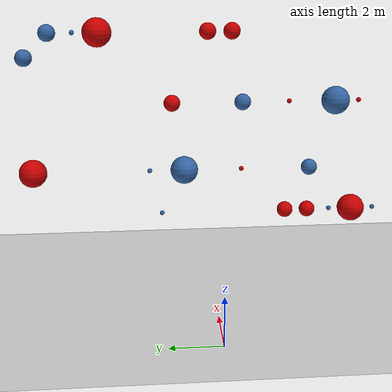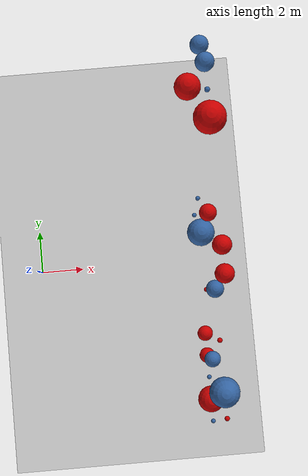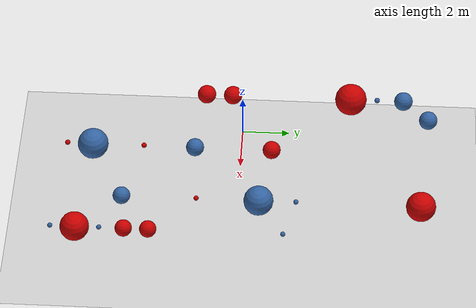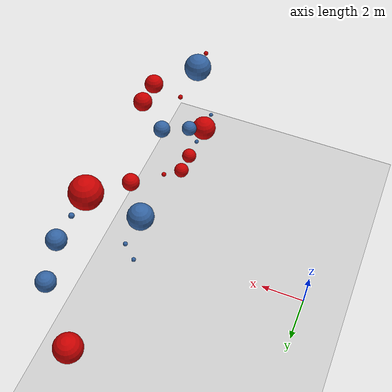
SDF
<sdf version="1.7">
 <world name="default">
  <physics type="ode">
   <gravity>0 0 -9.81</gravity>
   <max_step_size>0.001</max_step_size>
   <real_time_update_rate>1000</real_time_update_rate>
  </physics>
  <light name="sun" type="directional">
   <pose>0 0 10 0 -0 0</pose>
   <diffuse>0.8 0.8 0.8 1</diffuse>
   <specular>0.2 0.2 0.2 1</specular>
   <attenuation>
    <range>1000</range>
    <constant>0.9</constant>
    <linear>0.01</linear>
    <quadratic>0.001</quadratic>
   </attenuation>
   <direction>-0.5 0.1 -0.9</direction>
   <spot><inner_angle>0</inner_angle><outer_angle>0</outer_angle><falloff>0</falloff></spot>
  </light>
  <model name="ground_plane">
   <static>1</static>
   <link name="link">
    <collision name="collision">
     <geometry><plane><normal>0 0 1</normal><size>100 100</size></plane></geometry>
     <surface>
      <contact><collide_bitmask>65535</collide_bitmask></contact>
      <friction><ode><mu>100</mu><mu2>50</mu2></ode></friction>
     </surface>
    </collision>
    <visual name="visual">
     <cast_shadows>0</cast_shadows>
     <geometry><plane><normal>0 0 1</normal><size>100 100</size></plane></geometry>
     <material>
      <script><uri>file://media/materials/scripts/gazebo.material</uri><name>Gazebo/Grey</name></script>
     </material>
    </visual>
   </link>
  </model>
  <gravity>0 0 -9.8</gravity>
  <magnetic_field>6e-06 2.3e-05 -4.2e-05</magnetic_field>
  <atmosphere type="adiabatic"/>
  <physics type="ode">
   <max_step_size>0.001</max_step_size>
   <real_time_factor>1</real_time_factor>
   <real_time_update_rate>1000</real_time_update_rate>
  </physics>
  <scene><ambient>0.4 0.4 0.4 1</ambient><background>0.7 0.7 0.7 1</background><shadows>1</shadows></scene>
  <spherical_coordinates>
   <surface_model>EARTH_WGS84</surface_model>
   <latitude_deg>0</latitude_deg>
   <longitude_deg>0</longitude_deg>
   <elevation>0</elevation>
   <heading_deg>0</heading_deg>
  </spherical_coordinates>
  <model name="big_ball_red">
   <link name="link_2">
    <inertial>
     <mass>1</mass>
     <inertia><ixx>0.1</ixx><ixy>0</ixy><ixz>0</ixz><iyy>0.1</iyy><iyz>0</iyz><izz>0.1</izz></inertia>
    </inertial>
    <gravity>0</gravity>
    <visual name="visual">
     <geometry><sphere><radius>0.6</radius></sphere></geometry>
     <material>
      <lighting>1</lighting>
      <script><uri>file://media/materials/scripts/gazebo.material</uri><name>Gazebo/Grey</name></script>
      <shader type="pixel"><normal_map>__default__</normal_map></shader>
      <ambient>0.8 0 0 1</ambient>
      <diffuse>0.8 0 0 1</diffuse>
      <specular>0.8 0 0 1</specular>
      <emissive>0.8 0 0 1</emissive>
     </material>
    </visual>
    <collision name="collision">
     <geometry><sphere><radius>0.6</radius></sphere></geometry>
     <surface>
      <friction>
       <ode><mu>1</mu><mu2>1</mu2><fdir1>0 0 0</fdir1><slip1>0</slip1><slip2>0</slip2></ode>
       <torsional>
        <coefficient>1</coefficient>
        <patch_radius>0</patch_radius>
        <surface_radius>0</surface_radius>
        <use_patch_radius>1</use_patch_radius>
        <ode><slip>0</slip></ode>
       </torsional>
      </friction>
      <bounce><restitution_coefficient>0</restitution_coefficient><threshold>1e+06</threshold></bounce>
      <contact>
       <collide_without_contact>0</collide_without_contact>
       <collide_without_contact_bitmask>1</collide_without_contact_bitmask>
       <collide_bitmask>1</collide_bitmask>
       <ode>
        <soft_cfm>0</soft_cfm>
        <soft_erp>0.2</soft_erp>
        <kp>1e+13</kp>
        <kd>1</kd>
        <max_vel>0.01</max_vel>
        <min_depth>0</min_depth>
       </ode>
       <bullet>
        <split_impulse>1</split_impulse>
        <split_impulse_penetration_threshold>-0.01</split_impulse_penetration_threshold>
        <soft_cfm>0</soft_cfm>
        <soft_erp>0.2</soft_erp>
        <kp>1e+13</kp>
        <kd>1</kd>
       </bullet>
      </contact>
     </surface>
    </collision>
   </link>
   <static>0</static>
   <pose>7.5 -6.5 2 0 -0 0</pose>
  </model>
  <model name="small_ball_blue">
   <link name="link_16">
    <inertial>
     <mass>1</mass>
     <inertia><ixx>0.1</ixx><ixy>0</ixy><ixz>0</ixz><iyy>0.1</iyy><iyz>0</iyz><izz>0.1</izz></inertia>
    </inertial>
    <gravity>0</gravity>
    <visual name="visual">
     <geometry><sphere><radius>0.1</radius></sphere></geometry>
     <material>
      <lighting>1</lighting>
      <script><uri>file://media/materials/scripts/gazebo.material</uri><name>Gazebo/Grey</name></script>
      <shader type="pixel"><normal_map>__default__</normal_map></shader>
      <ambient>0.204 0.396 0.643 1</ambient>
      <diffuse>0.204 0.396 0.643 1</diffuse>
      <specular>0.204 0.396 0.643 1</specular>
      <emissive>0.125 0.29 0.529 1</emissive>
     </material>
    </visual>
    <collision name="collision">
     <geometry><sphere><radius>0.1</radius></sphere></geometry>
     <surface>
      <friction>
       <ode><mu>1</mu><mu2>1</mu2><fdir1>0 0 0</fdir1><slip1>0</slip1><slip2>0</slip2></ode>
       <torsional>
        <coefficient>1</coefficient>
        <patch_radius>0</patch_radius>
        <surface_radius>0</surface_radius>
        <use_patch_radius>1</use_patch_radius>
        <ode><slip>0</slip></ode>
       </torsional>
      </friction>
      <bounce><restitution_coefficient>0</restitution_coefficient><threshold>1e+06</threshold></bounce>
      <contact>
       <collide_without_contact>0</collide_without_contact>
       <collide_without_contact_bitmask>1</collide_without_contact_bitmask>
       <collide_bitmask>1</collide_bitmask>
       <ode>
        <soft_cfm>0</soft_cfm>
        <soft_erp>0.2</soft_erp>
        <kp>1e+13</kp>
        <kd>1</kd>
        <max_vel>0.01</max_vel>
        <min_depth>0</min_depth>
       </ode>
       <bullet>
        <split_impulse>1</split_impulse>
        <split_impulse_penetration_threshold>-0.01</split_impulse_penetration_threshold>
        <soft_cfm>0</soft_cfm>
        <soft_erp>0.2</soft_erp>
        <kp>1e+13</kp>
        <kd>1</kd>
       </bullet>
      </contact>
     </surface>
    </collision>
   </link>
   <static>0</static>
   <pose>7.5 -5.5 2 0 -0 0</pose>
  </model>
  <model name="medium_ball_red">
   <link name="link_3">
    <inertial>
     <mass>1</mass>
     <inertia><ixx>0.1</ixx><ixy>0</ixy><ixz>0</ixz><iyy>0.1</iyy><iyz>0</iyz><izz>0.1</izz></inertia>
    </inertial>
    <gravity>0</gravity>
    <visual name="visual">
     <geometry><sphere><radius>0.35</radius></sphere></geometry>
     <material>
      <lighting>1</lighting>
      <script><uri>file://media/materials/scripts/gazebo.material</uri><name>Gazebo/Grey</name></script>
      <shader type="pixel"><normal_map>__default__</normal_map></shader>
      <ambient>0.8 0 0 1</ambient>
      <diffuse>0.8 0 0 1</diffuse>
      <specular>0.8 0 0 1</specular>
      <emissive>0.8 0 0 1</emissive>
     </material>
    </visual>
    <collision name="collision">
     <geometry><sphere><radius>0.35</radius></sphere></geometry>
     <surface>
      <friction>
       <ode><mu>1</mu><mu2>1</mu2><fdir1>0 0 0</fdir1><slip1>0</slip1><slip2>0</slip2></ode>
       <torsional>
        <coefficient>1</coefficient>
        <patch_radius>0</patch_radius>
        <surface_radius>0</surface_radius>
        <use_patch_radius>1</use_patch_radius>
        <ode><slip>0</slip></ode>
       </torsional>
      </friction>
      <bounce><restitution_coefficient>0</restitution_coefficient><threshold>1e+06</threshold></bounce>
      <contact>
       <collide_without_contact>0</collide_without_contact>
       <collide_without_contact_bitmask>1</collide_without_contact_bitmask>
       <collide_bitmask>1</collide_bitmask>
       <ode>
        <soft_cfm>0</soft_cfm>
        <soft_erp>0.2</soft_erp>
        <kp>1e+13</kp>
        <kd>1</kd>
        <max_vel>0.01</max_vel>
        <min_depth>0</min_depth>
       </ode>
       <bullet>
        <split_impulse>1</split_impulse>
        <split_impulse_penetration_threshold>-0.01</split_impulse_penetration_threshold>
        <soft_cfm>0</soft_cfm>
        <soft_erp>0.2</soft_erp>
        <kp>1e+13</kp>
        <kd>1</kd>
       </bullet>
      </contact>
     </surface>
    </collision>
   </link>
   <static>0</static>
   <pose>7.5 -4.5 2 0 -0 0</pose>
  </model>
  <model name="medium_ball_red_0">
   <link name="link_3">
    <inertial>
     <mass>1</mass>
     <inertia><ixx>0.1</ixx><ixy>0</ixy><ixz>0</ixz><iyy>0.1</iyy><iyz>0</iyz><izz>0.1</izz></inertia>
    </inertial>
    <gravity>0</gravity>
    <visual name="visual">
     <geometry><sphere><radius>0.35</radius></sphere></geometry>
     <material>
      <lighting>1</lighting>
      <script><uri>file://media/materials/scripts/gazebo.material</uri><name>Gazebo/Grey</name></script>
      <shader type="pixel"><normal_map>__default__</normal_map></shader>
      <ambient>0.8 0 0 1</ambient>
      <diffuse>0.8 0 0 1</diffuse>
      <specular>0.8 0 0 1</specular>
      <emissive>0.8 0 0 1</emissive>
     </material>
    </visual>
    <collision name="collision">
     <geometry><sphere><radius>0.35</radius></sphere></geometry>
     <surface>
      <friction>
       <ode><mu>1</mu><mu2>1</mu2><fdir1>0 0 0</fdir1><slip1>0</slip1><slip2>0</slip2></ode>
       <torsional>
        <coefficient>1</coefficient>
        <patch_radius>0</patch_radius>
        <surface_radius>0</surface_radius>
        <use_patch_radius>1</use_patch_radius>
        <ode><slip>0</slip></ode>
       </torsional>
      </friction>
      <bounce><restitution_coefficient>0</restitution_coefficient><threshold>1e+06</threshold></bounce>
      <contact>
       <collide_without_contact>0</collide_without_contact>
       <collide_without_contact_bitmask>1</collide_without_contact_bitmask>
       <collide_bitmask>1</collide_bitmask>
       <ode>
        <soft_cfm>0</soft_cfm>
        <soft_erp>0.2</soft_erp>
        <kp>1e+13</kp>
        <kd>1</kd>
        <max_vel>0.01</max_vel>
        <min_depth>0</min_depth>
       </ode>
       <bullet>
        <split_impulse>1</split_impulse>
        <split_impulse_penetration_threshold>-0.01</split_impulse_penetration_threshold>
        <soft_cfm>0</soft_cfm>
        <soft_erp>0.2</soft_erp>
        <kp>1e+13</kp>
        <kd>1</kd>
       </bullet>
      </contact>
     </surface>
    </collision>
   </link>
   <static>0</static>
   <pose>7.5 -3.5 2 0 -0 0</pose>
  </model>
  <model name="small_ball_blue_0">
   <link name="link_16">
    <inertial>
     <mass>1</mass>
     <inertia><ixx>0.1</ixx><ixy>0</ixy><ixz>0</ixz><iyy>0.1</iyy><iyz>0</iyz><izz>0.1</izz></inertia>
    </inertial>
    <gravity>0</gravity>
    <visual name="visual">
     <geometry><sphere><radius>0.1</radius></sphere></geometry>
     <material>
      <lighting>1</lighting>
      <script><uri>file://media/materials/scripts/gazebo.material</uri><name>Gazebo/Grey</name></script>
      <shader type="pixel"><normal_map>__default__</normal_map></shader>
      <ambient>0.204 0.396 0.643 1</ambient>
      <diffuse>0.204 0.396 0.643 1</diffuse>
      <specular>0.204 0.396 0.643 1</specular>
      <emissive>0.125 0.29 0.529 1</emissive>
     </material>
    </visual>
    <collision name="collision">
     <geometry><sphere><radius>0.1</radius></sphere></geometry>
     <surface>
      <friction>
       <ode><mu>1</mu><mu2>1</mu2><fdir1>0 0 0</fdir1><slip1>0</slip1><slip2>0</slip2></ode>
       <torsional>
        <coefficient>1</coefficient>
        <patch_radius>0</patch_radius>
        <surface_radius>0</surface_radius>
        <use_patch_radius>1</use_patch_radius>
        <ode><slip>0</slip></ode>
       </torsional>
      </friction>
      <bounce><restitution_coefficient>0</restitution_coefficient><threshold>1e+06</threshold></bounce>
      <contact>
       <collide_without_contact>0</collide_without_contact>
       <collide_without_contact_bitmask>1</collide_without_contact_bitmask>
       <collide_bitmask>1</collide_bitmask>
       <ode>
        <soft_cfm>0</soft_cfm>
        <soft_erp>0.2</soft_erp>
        <kp>1e+13</kp>
        <kd>1</kd>
        <max_vel>0.01</max_vel>
        <min_depth>0</min_depth>
       </ode>
       <bullet>
        <split_impulse>1</split_impulse>
        <split_impulse_penetration_threshold>-0.01</split_impulse_penetration_threshold>
        <soft_cfm>0</soft_cfm>
        <soft_erp>0.2</soft_erp>
        <kp>1e+13</kp>
        <kd>1</kd>
       </bullet>
      </contact>
     </surface>
    </collision>
   </link>
   <static>0</static>
   <pose>7.5 2 2 0 -0 0</pose>
  </model>
  <model name="big_ball_red_0">
   <link name="link_2">
    <inertial>
     <mass>1</mass>
     <inertia><ixx>0.1</ixx><ixy>0</ixy><ixz>0</ixz><iyy>0.1</iyy><iyz>0</iyz><izz>0.1</izz></inertia>
    </inertial>
    <gravity>0</gravity>
    <visual name="visual">
     <geometry><sphere><radius>0.6</radius></sphere></geometry>
     <material>
      <lighting>1</lighting>
      <script><uri>file://media/materials/scripts/gazebo.material</uri><name>Gazebo/Grey</name></script>
      <shader type="pixel"><normal_map>__default__</normal_map></shader>
      <ambient>0.8 0 0 1</ambient>
      <diffuse>0.8 0 0 1</diffuse>
      <specular>0.8 0 0 1</specular>
      <emissive>0.8 0 0 1</emissive>
     </material>
    </visual>
    <collision name="collision">
     <geometry><sphere><radius>0.6</radius></sphere></geometry>
     <surface>
      <friction>
       <ode><mu>1</mu><mu2>1</mu2><fdir1>0 0 0</fdir1><slip1>0</slip1><slip2>0</slip2></ode>
       <torsional>
        <coefficient>1</coefficient>
        <patch_radius>0</patch_radius>
        <surface_radius>0</surface_radius>
        <use_patch_radius>1</use_patch_radius>
        <ode><slip>0</slip></ode>
       </torsional>
      </friction>
      <bounce><restitution_coefficient>0</restitution_coefficient><threshold>1e+06</threshold></bounce>
      <contact>
       <collide_without_contact>0</collide_without_contact>
       <collide_without_contact_bitmask>1</collide_without_contact_bitmask>
       <collide_bitmask>1</collide_bitmask>
       <ode>
        <soft_cfm>0</soft_cfm>
        <soft_erp>0.2</soft_erp>
        <kp>1e+13</kp>
        <kd>1</kd>
        <max_vel>0.01</max_vel>
        <min_depth>0</min_depth>
       </ode>
       <bullet>
        <split_impulse>1</split_impulse>
        <split_impulse_penetration_threshold>-0.01</split_impulse_penetration_threshold>
        <soft_cfm>0</soft_cfm>
        <soft_erp>0.2</soft_erp>
        <kp>1e+13</kp>
        <kd>1</kd>
       </bullet>
      </contact>
     </surface>
    </collision>
   </link>
   <static>0</static>
   <pose>7.5 7.5 4.00001 0 -0 0</pose>
  </model>
  <model name="medium_ball_blue">
   <link name="link_12">
    <inertial>
     <mass>1</mass>
     <inertia><ixx>0.1</ixx><ixy>0</ixy><ixz>0</ixz><iyy>0.1</iyy><iyz>0</iyz><izz>0.1</izz></inertia>
    </inertial>
    <gravity>0</gravity>
    <visual name="visual">
     <geometry><sphere><radius>0.35</radius></sphere></geometry>
     <material>
      <lighting>1</lighting>
      <script><uri>file://media/materials/scripts/gazebo.material</uri><name>Gazebo/Grey</name></script>
      <shader type="pixel"><normal_map>__default__</normal_map></shader>
      <ambient>0.204 0.396 0.643 1</ambient>
      <diffuse>0.204 0.396 0.643 1</diffuse>
      <specular>0.204 0.396 0.643 1</specular>
      <emissive>0.204 0.396 0.643 1</emissive>
     </material>
    </visual>
    <collision name="collision">
     <geometry><sphere><radius>0.35</radius></sphere></geometry>
     <surface>
      <friction>
       <ode><mu>1</mu><mu2>1</mu2><fdir1>0 0 0</fdir1><slip1>0</slip1><slip2>0</slip2></ode>
       <torsional>
        <coefficient>1</coefficient>
        <patch_radius>0</patch_radius>
        <surface_radius>0</surface_radius>
        <use_patch_radius>1</use_patch_radius>
        <ode><slip>0</slip></ode>
       </torsional>
      </friction>
      <bounce><restitution_coefficient>0</restitution_coefficient><threshold>1e+06</threshold></bounce>
      <contact>
       <collide_without_contact>0</collide_without_contact>
       <collide_without_contact_bitmask>1</collide_without_contact_bitmask>
       <collide_bitmask>1</collide_bitmask>
       <ode>
        <soft_cfm>0</soft_cfm>
        <soft_erp>0.2</soft_erp>
        <kp>1e+13</kp>
        <kd>1</kd>
        <max_vel>0.01</max_vel>
        <min_depth>0</min_depth>
       </ode>
       <bullet>
        <split_impulse>1</split_impulse>
        <split_impulse_penetration_threshold>-0.01</split_impulse_penetration_threshold>
        <soft_cfm>0</soft_cfm>
        <soft_erp>0.2</soft_erp>
        <kp>1e+13</kp>
        <kd>1</kd>
       </bullet>
      </contact>
     </surface>
    </collision>
   </link>
   <static>0</static>
   <pose>7.5 7.5 9.00001 0 -0 0</pose>
  </model>
  <model name="medium_ball_blue_0">
   <link name="link_12">
    <inertial>
     <mass>1</mass>
     <inertia><ixx>0.1</ixx><ixy>0</ixy><ixz>0</ixz><iyy>0.1</iyy><iyz>0</iyz><izz>0.1</izz></inertia>
    </inertial>
    <gravity>0</gravity>
    <visual name="visual">
     <geometry><sphere><radius>0.35</radius></sphere></geometry>
     <material>
      <lighting>1</lighting>
      <script><uri>file://media/materials/scripts/gazebo.material</uri><name>Gazebo/Grey</name></script>
      <shader type="pixel"><normal_map>__default__</normal_map></shader>
      <ambient>0.204 0.396 0.643 1</ambient>
      <diffuse>0.204 0.396 0.643 1</diffuse>
      <specular>0.204 0.396 0.643 1</specular>
      <emissive>0.204 0.396 0.643 1</emissive>
     </material>
    </visual>
    <collision name="collision">
     <geometry><sphere><radius>0.35</radius></sphere></geometry>
     <surface>
      <friction>
       <ode><mu>1</mu><mu2>1</mu2><fdir1>0 0 0</fdir1><slip1>0</slip1><slip2>0</slip2></ode>
       <torsional>
        <coefficient>1</coefficient>
        <patch_radius>0</patch_radius>
        <surface_radius>0</surface_radius>
        <use_patch_radius>1</use_patch_radius>
        <ode><slip>0</slip></ode>
       </torsional>
      </friction>
      <bounce><restitution_coefficient>0</restitution_coefficient><threshold>1e+06</threshold></bounce>
      <contact>
       <collide_without_contact>0</collide_without_contact>
       <collide_without_contact_bitmask>1</collide_without_contact_bitmask>
       <collide_bitmask>1</collide_bitmask>
       <ode>
        <soft_cfm>0</soft_cfm>
        <soft_erp>0.2</soft_erp>
        <kp>1e+13</kp>
        <kd>1</kd>
        <max_vel>0.01</max_vel>
        <min_depth>0</min_depth>
       </ode>
       <bullet>
        <split_impulse>1</split_impulse>
        <split_impulse_penetration_threshold>-0.01</split_impulse_penetration_threshold>
        <soft_cfm>0</soft_cfm>
        <soft_erp>0.2</soft_erp>
        <kp>1e+13</kp>
        <kd>1</kd>
       </bullet>
      </contact>
     </surface>
    </collision>
   </link>
   <static>0</static>
   <pose>7.5 6.5 10 0 -0 0</pose>
  </model>
  <model name="small_ball_blue_1">
   <link name="link_16">
    <inertial>
     <mass>1</mass>
     <inertia><ixx>0.1</ixx><ixy>0</ixy><ixz>0</ixz><iyy>0.1</iyy><iyz>0</iyz><izz>0.1</izz></inertia>
    </inertial>
    <gravity>0</gravity>
    <visual name="visual">
     <geometry><sphere><radius>0.1</radius></sphere></geometry>
     <material>
      <lighting>1</lighting>
      <script><uri>file://media/materials/scripts/gazebo.material</uri><name>Gazebo/Grey</name></script>
      <shader type="pixel"><normal_map>__default__</normal_map></shader>
      <ambient>0.204 0.396 0.643 1</ambient>
      <diffuse>0.204 0.396 0.643 1</diffuse>
      <specular>0.204 0.396 0.643 1</specular>
      <emissive>0.125 0.29 0.529 1</emissive>
     </material>
    </visual>
    <collision name="collision">
     <geometry><sphere><radius>0.1</radius></sphere></geometry>
     <surface>
      <friction>
       <ode><mu>1</mu><mu2>1</mu2><fdir1>0 0 0</fdir1><slip1>0</slip1><slip2>0</slip2></ode>
       <torsional>
        <coefficient>1</coefficient>
        <patch_radius>0</patch_radius>
        <surface_radius>0</surface_radius>
        <use_patch_radius>1</use_patch_radius>
        <ode><slip>0</slip></ode>
       </torsional>
      </friction>
      <bounce><restitution_coefficient>0</restitution_coefficient><threshold>1e+06</threshold></bounce>
      <contact>
       <collide_without_contact>0</collide_without_contact>
       <collide_without_contact_bitmask>1</collide_without_contact_bitmask>
       <collide_bitmask>1</collide_bitmask>
       <ode>
        <soft_cfm>0</soft_cfm>
        <soft_erp>0.2</soft_erp>
        <kp>1e+13</kp>
        <kd>1</kd>
        <max_vel>0.01</max_vel>
        <min_depth>0</min_depth>
       </ode>
       <bullet>
        <split_impulse>1</split_impulse>
        <split_impulse_penetration_threshold>-0.01</split_impulse_penetration_threshold>
        <soft_cfm>0</soft_cfm>
        <soft_erp>0.2</soft_erp>
        <kp>1e+13</kp>
        <kd>1</kd>
       </bullet>
      </contact>
     </surface>
    </collision>
   </link>
   <static>0</static>
   <pose>7.5 5.5 10 0 -0 0</pose>
  </model>
  <model name="big_ball_red_1">
   <link name="link_2">
    <inertial>
     <mass>1</mass>
     <inertia><ixx>0.1</ixx><ixy>0</ixy><ixz>0</ixz><iyy>0.1</iyy><iyz>0</iyz><izz>0.1</izz></inertia>
    </inertial>
    <gravity>0</gravity>
    <visual name="visual">
     <geometry><sphere><radius>0.6</radius></sphere></geometry>
     <material>
      <lighting>1</lighting>
      <script><uri>file://media/materials/scripts/gazebo.material</uri><name>Gazebo/Grey</name></script>
      <shader type="pixel"><normal_map>__default__</normal_map></shader>
      <ambient>0.8 0 0 1</ambient>
      <diffuse>0.8 0 0 1</diffuse>
      <specular>0.8 0 0 1</specular>
      <emissive>0.8 0 0 1</emissive>
     </material>
    </visual>
    <collision name="collision">
     <geometry><sphere><radius>0.6</radius></sphere></geometry>
     <surface>
      <friction>
       <ode><mu>1</mu><mu2>1</mu2><fdir1>0 0 0</fdir1><slip1>0</slip1><slip2>0</slip2></ode>
       <torsional>
        <coefficient>1</coefficient>
        <patch_radius>0</patch_radius>
        <surface_radius>0</surface_radius>
        <use_patch_radius>1</use_patch_radius>
        <ode><slip>0</slip></ode>
       </torsional>
      </friction>
      <bounce><restitution_coefficient>0</restitution_coefficient><threshold>1e+06</threshold></bounce>
      <contact>
       <collide_without_contact>0</collide_without_contact>
       <collide_without_contact_bitmask>1</collide_without_contact_bitmask>
       <collide_bitmask>1</collide_bitmask>
       <ode>
        <soft_cfm>0</soft_cfm>
        <soft_erp>0.2</soft_erp>
        <kp>1e+13</kp>
        <kd>1</kd>
        <max_vel>0.01</max_vel>
        <min_depth>0</min_depth>
       </ode>
       <bullet>
        <split_impulse>1</split_impulse>
        <split_impulse_penetration_threshold>-0.01</split_impulse_penetration_threshold>
        <soft_cfm>0</soft_cfm>
        <soft_erp>0.2</soft_erp>
        <kp>1e+13</kp>
        <kd>1</kd>
       </bullet>
      </contact>
     </surface>
    </collision>
   </link>
   <static>0</static>
   <pose>7.5 4.5 10 0 -0 0</pose>
  </model>
  <model name="medium_ball_red_1">
   <link name="link_3">
    <inertial>
     <mass>1</mass>
     <inertia><ixx>0.1</ixx><ixy>0</ixy><ixz>0</ixz><iyy>0.1</iyy><iyz>0</iyz><izz>0.1</izz></inertia>
    </inertial>
    <gravity>0</gravity>
    <visual name="visual">
     <geometry><sphere><radius>0.35</radius></sphere></geometry>
     <material>
      <lighting>1</lighting>
      <script><uri>file://media/materials/scripts/gazebo.material</uri><name>Gazebo/Grey</name></script>
      <shader type="pixel"><normal_map>__default__</normal_map></shader>
      <ambient>0.8 0 0 1</ambient>
      <diffuse>0.8 0 0 1</diffuse>
      <specular>0.8 0 0 1</specular>
      <emissive>0.8 0 0 1</emissive>
     </material>
    </visual>
    <collision name="collision">
     <geometry><sphere><radius>0.35</radius></sphere></geometry>
     <surface>
      <friction>
       <ode><mu>1</mu><mu2>1</mu2><fdir1>0 0 0</fdir1><slip1>0</slip1><slip2>0</slip2></ode>
       <torsional>
        <coefficient>1</coefficient>
        <patch_radius>0</patch_radius>
        <surface_radius>0</surface_radius>
        <use_patch_radius>1</use_patch_radius>
        <ode><slip>0</slip></ode>
       </torsional>
      </friction>
      <bounce><restitution_coefficient>0</restitution_coefficient><threshold>1e+06</threshold></bounce>
      <contact>
       <collide_without_contact>0</collide_without_contact>
       <collide_without_contact_bitmask>1</collide_without_contact_bitmask>
       <collide_bitmask>1</collide_bitmask>
       <ode>
        <soft_cfm>0</soft_cfm>
        <soft_erp>0.2</soft_erp>
        <kp>1e+13</kp>
        <kd>1</kd>
        <max_vel>0.01</max_vel>
        <min_depth>0</min_depth>
       </ode>
       <bullet>
        <split_impulse>1</split_impulse>
        <split_impulse_penetration_threshold>-0.01</split_impulse_penetration_threshold>
        <soft_cfm>0</soft_cfm>
        <soft_erp>0.2</soft_erp>
        <kp>1e+13</kp>
        <kd>1</kd>
       </bullet>
      </contact>
     </surface>
    </collision>
   </link>
   <static>0</static>
   <pose>7.5 0 10 0 -0 0</pose>
  </model>
  <model name="medium_ball_red_2">
   <link name="link_3">
    <inertial>
     <mass>1</mass>
     <inertia><ixx>0.1</ixx><ixy>0</ixy><ixz>0</ixz><iyy>0.1</iyy><iyz>0</iyz><izz>0.1</izz></inertia>
    </inertial>
    <gravity>0</gravity>
    <visual name="visual">
     <geometry><sphere><radius>0.35</radius></sphere></geometry>
     <material>
      <lighting>1</lighting>
      <script><uri>file://media/materials/scripts/gazebo.material</uri><name>Gazebo/Grey</name></script>
      <shader type="pixel"><normal_map>__default__</normal_map></shader>
      <ambient>0.8 0 0 1</ambient>
      <diffuse>0.8 0 0 1</diffuse>
      <specular>0.8 0 0 1</specular>
      <emissive>0.8 0 0 1</emissive>
     </material>
    </visual>
    <collision name="collision">
     <geometry><sphere><radius>0.35</radius></sphere></geometry>
     <surface>
      <friction>
       <ode><mu>1</mu><mu2>1</mu2><fdir1>0 0 0</fdir1><slip1>0</slip1><slip2>0</slip2></ode>
       <torsional>
        <coefficient>1</coefficient>
        <patch_radius>0</patch_radius>
        <surface_radius>0</surface_radius>
        <use_patch_radius>1</use_patch_radius>
        <ode><slip>0</slip></ode>
       </torsional>
      </friction>
      <bounce><restitution_coefficient>0</restitution_coefficient><threshold>1e+06</threshold></bounce>
      <contact>
       <collide_without_contact>0</collide_without_contact>
       <collide_without_contact_bitmask>1</collide_without_contact_bitmask>
       <collide_bitmask>1</collide_bitmask>
       <ode>
        <soft_cfm>0</soft_cfm>
        <soft_erp>0.2</soft_erp>
        <kp>1e+13</kp>
        <kd>1</kd>
        <max_vel>0.01</max_vel>
        <min_depth>0</min_depth>
       </ode>
       <bullet>
        <split_impulse>1</split_impulse>
        <split_impulse_penetration_threshold>-0.01</split_impulse_penetration_threshold>
        <soft_cfm>0</soft_cfm>
        <soft_erp>0.2</soft_erp>
        <kp>1e+13</kp>
        <kd>1</kd>
       </bullet>
      </contact>
     </surface>
    </collision>
   </link>
   <static>0</static>
   <pose>7.5 -1 10 0 -0 0</pose>
  </model>
  <model name="small_ball_red">
   <link name="link_13">
    <inertial>
     <mass>1</mass>
     <inertia><ixx>0.1</ixx><ixy>0</ixy><ixz>0</ixz><iyy>0.1</iyy><iyz>0</iyz><izz>0.1</izz></inertia>
    </inertial>
    <gravity>0</gravity>
    <visual name="visual">
     <geometry><sphere><radius>0.1</radius></sphere></geometry>
     <material>
      <lighting>1</lighting>
      <script><uri>file://media/materials/scripts/gazebo.material</uri><name>Gazebo/Grey</name></script>
      <shader type="pixel"><normal_map>__default__</normal_map></shader>
      <ambient>0.8 0 0 1</ambient>
      <diffuse>0.8 0 0 1</diffuse>
      <specular>0.8 0 0 1</specular>
      <emissive>0.8 0 0 1</emissive>
     </material>
    </visual>
    <collision name="collision">
     <geometry><sphere><radius>0.1</radius></sphere></geometry>
     <surface>
      <friction>
       <ode><mu>1</mu><mu2>1</mu2><fdir1>0 0 0</fdir1><slip1>0</slip1><slip2>0</slip2></ode>
       <torsional>
        <coefficient>1</coefficient>
        <patch_radius>0</patch_radius>
        <surface_radius>0</surface_radius>
        <use_patch_radius>1</use_patch_radius>
        <ode><slip>0</slip></ode>
       </torsional>
      </friction>
      <bounce><restitution_coefficient>0</restitution_coefficient><threshold>1e+06</threshold></bounce>
      <contact>
       <collide_without_contact>0</collide_without_contact>
       <collide_without_contact_bitmask>1</collide_without_contact_bitmask>
       <collide_bitmask>1</collide_bitmask>
       <ode>
        <soft_cfm>0</soft_cfm>
        <soft_erp>0.2</soft_erp>
        <kp>1e+13</kp>
        <kd>1</kd>
        <max_vel>0.01</max_vel>
        <min_depth>0</min_depth>
       </ode>
       <bullet>
        <split_impulse>1</split_impulse>
        <split_impulse_penetration_threshold>-0.01</split_impulse_penetration_threshold>
        <soft_cfm>0</soft_cfm>
        <soft_erp>0.2</soft_erp>
        <kp>1e+13</kp>
        <kd>1</kd>
       </bullet>
      </contact>
     </surface>
    </collision>
   </link>
   <static>0</static>
   <pose>7.5 -6.5 7.00001 0 -0 0</pose>
  </model>
  <model name="big_ball_blue">
   <link name="link_14">
    <inertial>
     <mass>1</mass>
     <inertia><ixx>0.1</ixx><ixy>0</ixy><ixz>0</ixz><iyy>0.1</iyy><iyz>0</iyz><izz>0.1</izz></inertia>
    </inertial>
    <gravity>0</gravity>
    <visual name="visual">
     <geometry><sphere><radius>0.6</radius></sphere></geometry>
     <material>
      <lighting>1</lighting>
      <script><uri>file://media/materials/scripts/gazebo.material</uri><name>Gazebo/Grey</name></script>
      <shader type="pixel"><normal_map>__default__</normal_map></shader>
      <ambient>0.204 0.396 0.643 1</ambient>
      <diffuse>0.204 0.396 0.643 1</diffuse>
      <specular>0.204 0.396 0.643 1</specular>
      <emissive>0.125 0.29 0.529 1</emissive>
     </material>
    </visual>
    <collision name="collision">
     <geometry><sphere><radius>0.6</radius></sphere></geometry>
     <surface>
      <friction>
       <ode><mu>1</mu><mu2>1</mu2><fdir1>0 0 0</fdir1><slip1>0</slip1><slip2>0</slip2></ode>
       <torsional>
        <coefficient>1</coefficient>
        <patch_radius>0</patch_radius>
        <surface_radius>0</surface_radius>
        <use_patch_radius>1</use_patch_radius>
        <ode><slip>0</slip></ode>
       </torsional>
      </friction>
      <bounce><restitution_coefficient>0</restitution_coefficient><threshold>1e+06</threshold></bounce>
      <contact>
       <collide_without_contact>0</collide_without_contact>
       <collide_without_contact_bitmask>1</collide_without_contact_bitmask>
       <collide_bitmask>1</collide_bitmask>
       <ode>
        <soft_cfm>0</soft_cfm>
        <soft_erp>0.2</soft_erp>
        <kp>1e+13</kp>
        <kd>1</kd>
        <max_vel>0.01</max_vel>
        <min_depth>0</min_depth>
       </ode>
       <bullet>
        <split_impulse>1</split_impulse>
        <split_impulse_penetration_threshold>-0.01</split_impulse_penetration_threshold>
        <soft_cfm>0</soft_cfm>
        <soft_erp>0.2</soft_erp>
        <kp>1e+13</kp>
        <kd>1</kd>
       </bullet>
      </contact>
     </surface>
    </collision>
   </link>
   <static>0</static>
   <pose>7.5 -5.5 7.00001 0 -0 0</pose>
  </model>
  <model name="small_ball_red_0">
   <link name="link_13">
    <inertial>
     <mass>1</mass>
     <inertia><ixx>0.1</ixx><ixy>0</ixy><ixz>0</ixz><iyy>0.1</iyy><iyz>0</iyz><izz>0.1</izz></inertia>
    </inertial>
    <gravity>0</gravity>
    <visual name="visual">
     <geometry><sphere><radius>0.1</radius></sphere></geometry>
     <material>
      <lighting>1</lighting>
      <script><uri>file://media/materials/scripts/gazebo.material</uri><name>Gazebo/Grey</name></script>
      <shader type="pixel"><normal_map>__default__</normal_map></shader>
      <ambient>0.8 0 0 1</ambient>
      <diffuse>0.8 0 0 1</diffuse>
      <specular>0.8 0 0 1</specular>
      <emissive>0.8 0 0 1</emissive>
     </material>
    </visual>
    <collision name="collision">
     <geometry><sphere><radius>0.1</radius></sphere></geometry>
     <surface>
      <friction>
       <ode><mu>1</mu><mu2>1</mu2><fdir1>0 0 0</fdir1><slip1>0</slip1><slip2>0</slip2></ode>
       <torsional>
        <coefficient>1</coefficient>
        <patch_radius>0</patch_radius>
        <surface_radius>0</surface_radius>
        <use_patch_radius>1</use_patch_radius>
        <ode><slip>0</slip></ode>
       </torsional>
      </friction>
      <bounce><restitution_coefficient>0</restitution_coefficient><threshold>1e+06</threshold></bounce>
      <contact>
       <collide_without_contact>0</collide_without_contact>
       <collide_without_contact_bitmask>1</collide_without_contact_bitmask>
       <collide_bitmask>1</collide_bitmask>
       <ode>
        <soft_cfm>0</soft_cfm>
        <soft_erp>0.2</soft_erp>
        <kp>1e+13</kp>
        <kd>1</kd>
        <max_vel>0.01</max_vel>
        <min_depth>0</min_depth>
       </ode>
       <bullet>
        <split_impulse>1</split_impulse>
        <split_impulse_penetration_threshold>-0.01</split_impulse_penetration_threshold>
        <soft_cfm>0</soft_cfm>
        <soft_erp>0.2</soft_erp>
        <kp>1e+13</kp>
        <kd>1</kd>
       </bullet>
      </contact>
     </surface>
    </collision>
   </link>
   <static>0</static>
   <pose>7.5 -3.5 7.00001 0 -0 0</pose>
  </model>
  <model name="medium_ball_red_3">
   <link name="link_3">
    <inertial>
     <mass>1</mass>
     <inertia><ixx>0.1</ixx><ixy>0</ixy><ixz>0</ixz><iyy>0.1</iyy><iyz>0</iyz><izz>0.1</izz></inertia>
    </inertial>
    <gravity>0</gravity>
    <visual name="visual">
     <geometry><sphere><radius>0.35</radius></sphere></geometry>
     <material>
      <lighting>1</lighting>
      <script><uri>file://media/materials/scripts/gazebo.material</uri><name>Gazebo/Grey</name></script>
      <shader type="pixel"><normal_map>__default__</normal_map></shader>
      <ambient>0.8 0 0 1</ambient>
      <diffuse>0.8 0 0 1</diffuse>
      <specular>0.8 0 0 1</specular>
      <emissive>0.8 0 0 1</emissive>
     </material>
    </visual>
    <collision name="collision">
     <geometry><sphere><radius>0.35</radius></sphere></geometry>
     <surface>
      <friction>
       <ode><mu>1</mu><mu2>1</mu2><fdir1>0 0 0</fdir1><slip1>0</slip1><slip2>0</slip2></ode>
       <torsional>
        <coefficient>1</coefficient>
        <patch_radius>0</patch_radius>
        <surface_radius>0</surface_radius>
        <use_patch_radius>1</use_patch_radius>
        <ode><slip>0</slip></ode>
       </torsional>
      </friction>
      <bounce><restitution_coefficient>0</restitution_coefficient><threshold>1e+06</threshold></bounce>
      <contact>
       <collide_without_contact>0</collide_without_contact>
       <collide_without_contact_bitmask>1</collide_without_contact_bitmask>
       <collide_bitmask>1</collide_bitmask>
       <ode>
        <soft_cfm>0</soft_cfm>
        <soft_erp>0.2</soft_erp>
        <kp>1e+13</kp>
        <kd>1</kd>
        <max_vel>0.01</max_vel>
        <min_depth>0</min_depth>
       </ode>
       <bullet>
        <split_impulse>1</split_impulse>
        <split_impulse_penetration_threshold>-0.01</split_impulse_penetration_threshold>
        <soft_cfm>0</soft_cfm>
        <soft_erp>0.2</soft_erp>
        <kp>1e+13</kp>
        <kd>1</kd>
       </bullet>
      </contact>
     </surface>
    </collision>
   </link>
   <static>0</static>
   <pose>7.5 1.5 7 0 -0 0</pose>
  </model>
  <model name="medium_ball_blue_1">
   <link name="link_12">
    <inertial>
     <mass>1</mass>
     <inertia><ixx>0.1</ixx><ixy>0</ixy><ixz>0</ixz><iyy>0.1</iyy><iyz>0</iyz><izz>0.1</izz></inertia>
    </inertial>
    <gravity>0</gravity>
    <visual name="visual">
     <geometry><sphere><radius>0.35</radius></sphere></geometry>
     <material>
      <lighting>1</lighting>
      <script><uri>file://media/materials/scripts/gazebo.material</uri><name>Gazebo/Grey</name></script>
      <shader type="pixel"><normal_map>__default__</normal_map></shader>
      <ambient>0.204 0.396 0.643 1</ambient>
      <diffuse>0.204 0.396 0.643 1</diffuse>
      <specular>0.204 0.396 0.643 1</specular>
      <emissive>0.204 0.396 0.643 1</emissive>
     </material>
    </visual>
    <collision name="collision">
     <geometry><sphere><radius>0.35</radius></sphere></geometry>
     <surface>
      <friction>
       <ode><mu>1</mu><mu2>1</mu2><fdir1>0 0 0</fdir1><slip1>0</slip1><slip2>0</slip2></ode>
       <torsional>
        <coefficient>1</coefficient>
        <patch_radius>0</patch_radius>
        <surface_radius>0</surface_radius>
        <use_patch_radius>1</use_patch_radius>
        <ode><slip>0</slip></ode>
       </torsional>
      </friction>
      <bounce><restitution_coefficient>0</restitution_coefficient><threshold>1e+06</threshold></bounce>
      <contact>
       <collide_without_contact>0</collide_without_contact>
       <collide_without_contact_bitmask>1</collide_without_contact_bitmask>
       <collide_bitmask>1</collide_bitmask>
       <ode>
        <soft_cfm>0</soft_cfm>
        <soft_erp>0.2</soft_erp>
        <kp>1e+13</kp>
        <kd>1</kd>
        <max_vel>0.01</max_vel>
        <min_depth>0</min_depth>
       </ode>
       <bullet>
        <split_impulse>1</split_impulse>
        <split_impulse_penetration_threshold>-0.01</split_impulse_penetration_threshold>
        <soft_cfm>0</soft_cfm>
        <soft_erp>0.2</soft_erp>
        <kp>1e+13</kp>
        <kd>1</kd>
       </bullet>
      </contact>
     </surface>
    </collision>
   </link>
   <static>0</static>
   <pose>7.5 -1.5 7 0 -0 0</pose>
  </model>
  <model name="small_ball_blue_2">
   <link name="link_16">
    <inertial>
     <mass>1</mass>
     <inertia><ixx>0.1</ixx><ixy>0</ixy><ixz>0</ixz><iyy>0.1</iyy><iyz>0</iyz><izz>0.1</izz></inertia>
    </inertial>
    <gravity>0</gravity>
    <visual name="visual">
     <geometry><sphere><radius>0.1</radius></sphere></geometry>
     <material>
      <lighting>1</lighting>
      <script><uri>file://media/materials/scripts/gazebo.material</uri><name>Gazebo/Grey</name></script>
      <shader type="pixel"><normal_map>__default__</normal_map></shader>
      <ambient>0.204 0.396 0.643 1</ambient>
      <diffuse>0.204 0.396 0.643 1</diffuse>
      <specular>0.204 0.396 0.643 1</specular>
      <emissive>0.125 0.29 0.529 1</emissive>
     </material>
    </visual>
    <collision name="collision">
     <geometry><sphere><radius>0.1</radius></sphere></geometry>
     <surface>
      <friction>
       <ode><mu>1</mu><mu2>1</mu2><fdir1>0 0 0</fdir1><slip1>0</slip1><slip2>0</slip2></ode>
       <torsional>
        <coefficient>1</coefficient>
        <patch_radius>0</patch_radius>
        <surface_radius>0</surface_radius>
        <use_patch_radius>1</use_patch_radius>
        <ode><slip>0</slip></ode>
       </torsional>
      </friction>
      <bounce><restitution_coefficient>0</restitution_coefficient><threshold>1e+06</threshold></bounce>
      <contact>
       <collide_without_contact>0</collide_without_contact>
       <collide_without_contact_bitmask>1</collide_without_contact_bitmask>
       <collide_bitmask>1</collide_bitmask>
       <ode>
        <soft_cfm>0</soft_cfm>
        <soft_erp>0.2</soft_erp>
        <kp>1e+13</kp>
        <kd>1</kd>
        <max_vel>0.01</max_vel>
        <min_depth>0</min_depth>
       </ode>
       <bullet>
        <split_impulse>1</split_impulse>
        <split_impulse_penetration_threshold>-0.01</split_impulse_penetration_threshold>
        <soft_cfm>0</soft_cfm>
        <soft_erp>0.2</soft_erp>
        <kp>1e+13</kp>
        <kd>1</kd>
       </bullet>
      </contact>
     </surface>
    </collision>
   </link>
   <static>0</static>
   <pose>7.5 2.5 4 0 -0 0</pose>
  </model>
  <model name="big_ball_blue_0">
   <link name="link_14">
    <inertial>
     <mass>1</mass>
     <inertia><ixx>0.1</ixx><ixy>0</ixy><ixz>0</ixz><iyy>0.1</iyy><iyz>0</iyz><izz>0.1</izz></inertia>
    </inertial>
    <gravity>0</gravity>
    <visual name="visual">
     <geometry><sphere><radius>0.6</radius></sphere></geometry>
     <material>
      <lighting>1</lighting>
      <script><uri>file://media/materials/scripts/gazebo.material</uri><name>Gazebo/Grey</name></script>
      <shader type="pixel"><normal_map>__default__</normal_map></shader>
      <ambient>0.204 0.396 0.643 1</ambient>
      <diffuse>0.204 0.396 0.643 1</diffuse>
      <specular>0.204 0.396 0.643 1</specular>
      <emissive>0.125 0.29 0.529 1</emissive>
     </material>
    </visual>
    <collision name="collision">
     <geometry><sphere><radius>0.6</radius></sphere></geometry>
     <surface>
      <friction>
       <ode><mu>1</mu><mu2>1</mu2><fdir1>0 0 0</fdir1><slip1>0</slip1><slip2>0</slip2></ode>
       <torsional>
        <coefficient>1</coefficient>
        <patch_radius>0</patch_radius>
        <surface_radius>0</surface_radius>
        <use_patch_radius>1</use_patch_radius>
        <ode><slip>0</slip></ode>
       </torsional>
      </friction>
      <bounce><restitution_coefficient>0</restitution_coefficient><threshold>1e+06</threshold></bounce>
      <contact>
       <collide_without_contact>0</collide_without_contact>
       <collide_without_contact_bitmask>1</collide_without_contact_bitmask>
       <collide_bitmask>1</collide_bitmask>
       <ode>
        <soft_cfm>0</soft_cfm>
        <soft_erp>0.2</soft_erp>
        <kp>1e+13</kp>
        <kd>1</kd>
        <max_vel>0.01</max_vel>
        <min_depth>0</min_depth>
       </ode>
       <bullet>
        <split_impulse>1</split_impulse>
        <split_impulse_penetration_threshold>-0.01</split_impulse_penetration_threshold>
        <soft_cfm>0</soft_cfm>
        <soft_erp>0.2</soft_erp>
        <kp>1e+13</kp>
        <kd>1</kd>
       </bullet>
      </contact>
     </surface>
    </collision>
   </link>
   <static>0</static>
   <pose>7.5 1 4 0 -0 0</pose>
  </model>
  <model name="small_ball_red_1">
   <link name="link_13">
    <inertial>
     <mass>1</mass>
     <inertia><ixx>0.1</ixx><ixy>0</ixy><ixz>0</ixz><iyy>0.1</iyy><iyz>0</iyz><izz>0.1</izz></inertia>
    </inertial>
    <gravity>0</gravity>
    <visual name="visual">
     <geometry><sphere><radius>0.1</radius></sphere></geometry>
     <material>
      <lighting>1</lighting>
      <script><uri>file://media/materials/scripts/gazebo.material</uri><name>Gazebo/Grey</name></script>
      <shader type="pixel"><normal_map>__default__</normal_map></shader>
      <ambient>0.8 0 0 1</ambient>
      <diffuse>0.8 0 0 1</diffuse>
      <specular>0.8 0 0 1</specular>
      <emissive>0.8 0 0 1</emissive>
     </material>
    </visual>
    <collision name="collision">
     <geometry><sphere><radius>0.1</radius></sphere></geometry>
     <surface>
      <friction>
       <ode><mu>1</mu><mu2>1</mu2><fdir1>0 0 0</fdir1><slip1>0</slip1><slip2>0</slip2></ode>
       <torsional>
        <coefficient>1</coefficient>
        <patch_radius>0</patch_radius>
        <surface_radius>0</surface_radius>
        <use_patch_radius>1</use_patch_radius>
        <ode><slip>0</slip></ode>
       </torsional>
      </friction>
      <bounce><restitution_coefficient>0</restitution_coefficient><threshold>1e+06</threshold></bounce>
      <contact>
       <collide_without_contact>0</collide_without_contact>
       <collide_without_contact_bitmask>1</collide_without_contact_bitmask>
       <collide_bitmask>1</collide_bitmask>
       <ode>
        <soft_cfm>0</soft_cfm>
        <soft_erp>0.2</soft_erp>
        <kp>1e+13</kp>
        <kd>1</kd>
        <max_vel>0.01</max_vel>
        <min_depth>0</min_depth>
       </ode>
       <bullet>
        <split_impulse>1</split_impulse>
        <split_impulse_penetration_threshold>-0.01</split_impulse_penetration_threshold>
        <soft_cfm>0</soft_cfm>
        <soft_erp>0.2</soft_erp>
        <kp>1e+13</kp>
        <kd>1</kd>
       </bullet>
      </contact>
     </surface>
    </collision>
   </link>
   <static>0</static>
   <pose>7.5 -1.5 4 0 -0 0</pose>
  </model>
  <model name="medium_ball_blue_2">
   <link name="link_12">
    <inertial>
     <mass>1</mass>
     <inertia><ixx>0.1</ixx><ixy>0</ixy><ixz>0</ixz><iyy>0.1</iyy><iyz>0</iyz><izz>0.1</izz></inertia>
    </inertial>
    <gravity>0</gravity>
    <visual name="visual">
     <geometry><sphere><radius>0.35</radius></sphere></geometry>
     <material>
      <lighting>1</lighting>
      <script><uri>file://media/materials/scripts/gazebo.material</uri><name>Gazebo/Grey</name></script>
      <shader type="pixel"><normal_map>__default__</normal_map></shader>
      <ambient>0.204 0.396 0.643 1</ambient>
      <diffuse>0.204 0.396 0.643 1</diffuse>
      <specular>0.204 0.396 0.643 1</specular>
      <emissive>0.204 0.396 0.643 1</emissive>
     </material>
    </visual>
    <collision name="collision">
     <geometry><sphere><radius>0.35</radius></sphere></geometry>
     <surface>
      <friction>
       <ode><mu>1</mu><mu2>1</mu2><fdir1>0 0 0</fdir1><slip1>0</slip1><slip2>0</slip2></ode>
       <torsional>
        <coefficient>1</coefficient>
        <patch_radius>0</patch_radius>
        <surface_radius>0</surface_radius>
        <use_patch_radius>1</use_patch_radius>
        <ode><slip>0</slip></ode>
       </torsional>
      </friction>
      <bounce><restitution_coefficient>0</restitution_coefficient><threshold>1e+06</threshold></bounce>
      <contact>
       <collide_without_contact>0</collide_without_contact>
       <collide_without_contact_bitmask>1</collide_without_contact_bitmask>
       <collide_bitmask>1</collide_bitmask>
       <ode>
        <soft_cfm>0</soft_cfm>
        <soft_erp>0.2</soft_erp>
        <kp>1e+13</kp>
        <kd>1</kd>
        <max_vel>0.01</max_vel>
        <min_depth>0</min_depth>
       </ode>
       <bullet>
        <split_impulse>1</split_impulse>
        <split_impulse_penetration_threshold>-0.01</split_impulse_penetration_threshold>
        <soft_cfm>0</soft_cfm>
        <soft_erp>0.2</soft_erp>
        <kp>1e+13</kp>
        <kd>1</kd>
       </bullet>
      </contact>
     </surface>
    </collision>
   </link>
   <static>0</static>
   <pose>7.5 -4.5 4 0 -0 0</pose>
  </model>
  <model name="small_ball_blue_3">
   <link name="link_16">
    <inertial>
     <mass>1</mass>
     <inertia><ixx>0.1</ixx><ixy>0</ixy><ixz>0</ixz><iyy>0.1</iyy><iyz>0</iyz><izz>0.1</izz></inertia>
    </inertial>
    <gravity>0</gravity>
    <visual name="visual">
     <geometry><sphere><radius>0.1</radius></sphere></geometry>
     <material>
      <lighting>1</lighting>
      <script><uri>file://media/materials/scripts/gazebo.material</uri><name>Gazebo/Grey</name></script>
      <shader type="pixel"><normal_map>__default__</normal_map></shader>
      <ambient>0.204 0.396 0.643 1</ambient>
      <diffuse>0.204 0.396 0.643 1</diffuse>
      <specular>0.204 0.396 0.643 1</specular>
      <emissive>0.125 0.29 0.529 1</emissive>
     </material>
    </visual>
    <collision name="collision">
     <geometry><sphere><radius>0.1</radius></sphere></geometry>
     <surface>
      <friction>
       <ode><mu>1</mu><mu2>1</mu2><fdir1>0 0 0</fdir1><slip1>0</slip1><slip2>0</slip2></ode>
       <torsional>
        <coefficient>1</coefficient>
        <patch_radius>0</patch_radius>
        <surface_radius>0</surface_radius>
        <use_patch_radius>1</use_patch_radius>
        <ode><slip>0</slip></ode>
       </torsional>
      </friction>
      <bounce><restitution_coefficient>0</restitution_coefficient><threshold>1e+06</threshold></bounce>
      <contact>
       <collide_without_contact>0</collide_without_contact>
       <collide_without_contact_bitmask>1</collide_without_contact_bitmask>
       <collide_bitmask>1</collide_bitmask>
       <ode>
        <soft_cfm>0</soft_cfm>
        <soft_erp>0.2</soft_erp>
        <kp>1e+13</kp>
        <kd>1</kd>
        <max_vel>0.01</max_vel>
        <min_depth>0</min_depth>
       </ode>
       <bullet>
        <split_impulse>1</split_impulse>
        <split_impulse_penetration_threshold>-0.01</split_impulse_penetration_threshold>
        <soft_cfm>0</soft_cfm>
        <soft_erp>0.2</soft_erp>
        <kp>1e+13</kp>
        <kd>1</kd>
       </bullet>
      </contact>
     </surface>
    </collision>
   </link>
   <static>0</static>
   <pose>7.5 -7.5 2 0 -0 0</pose>
  </model>
 </world>
</sdf>
